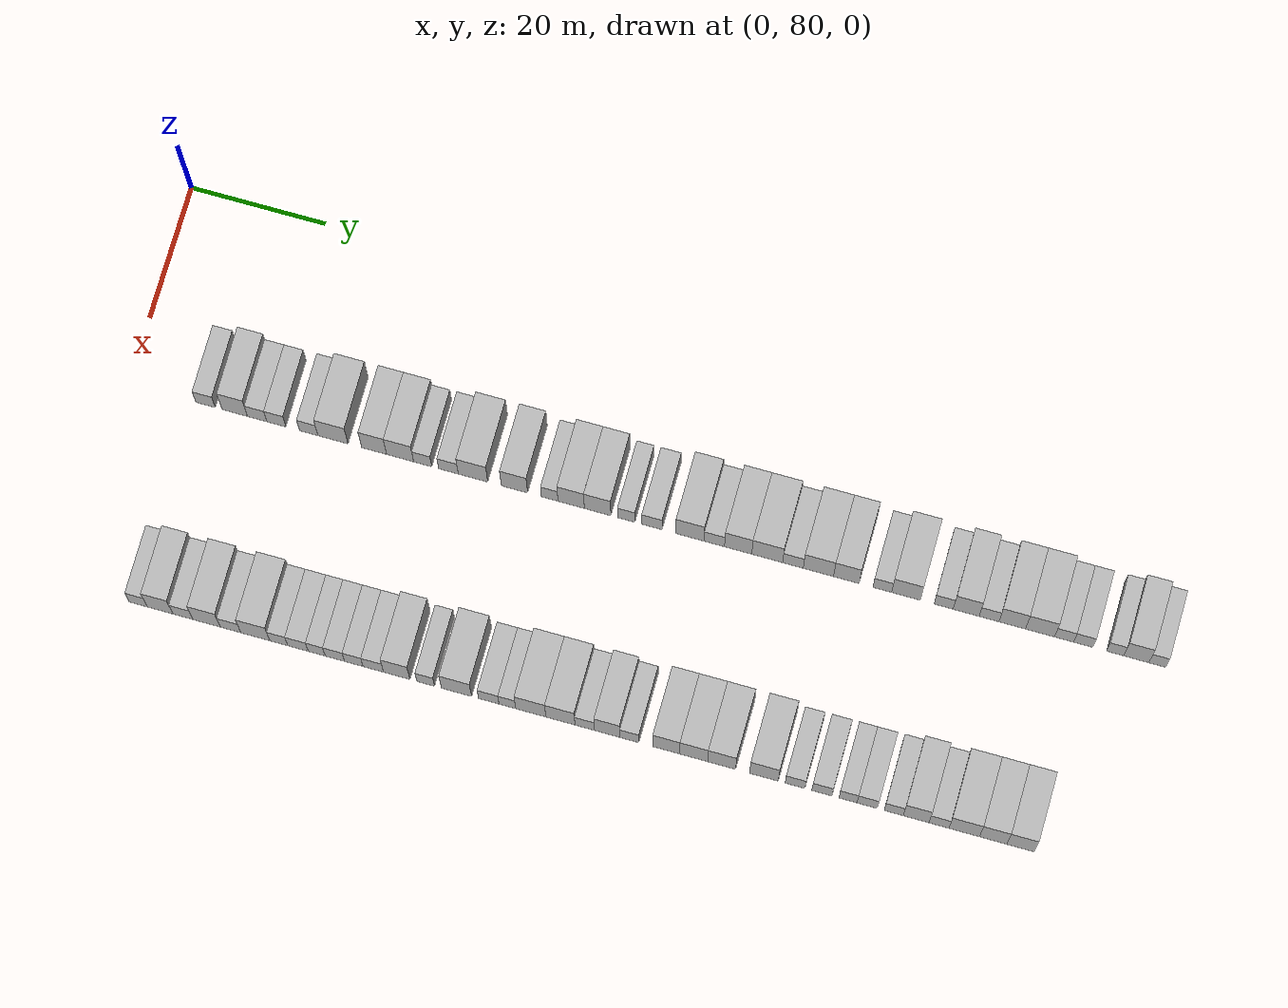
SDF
<sdf version="1.6">
 <world name="default">
  <model name="building_130">
   <static>1</static>
   <pose>25.0000 91.2222 0 0.000000 0.000000 0.000000</pose>
   <link name="link">
    <pose>0 0 3.00 0 0 0</pose>
    <collision name="collision"><geometry><box><size>10.0000 2.8652 6.0000</size></box></geometry></collision>
    <visual name="visual">
     <cast_shadows>0</cast_shadows>
     <geometry><box><size>10.0000 2.8652 6.0000</size></box></geometry>
     <material>
      <script>
       <uri>model://HANNAS_wall/materials/scripts</uri>
       <uri>model://HANNAS_wall/materials/textures</uri>
       <name>vrc/HANNAS_wall</name>
      </script>
     </material>
    </visual>
   </link>
  </model>
  <model name="building_131">
   <static>1</static>
   <pose>25.0000 95.5251 0 0.000000 0.000000 0.000000</pose>
   <link name="link">
    <pose>0 0 4.50 0 0 0</pose>
    <collision name="collision"><geometry><box><size>10.0000 3.7407 9.0000</size></box></geometry></collision>
    <visual name="visual">
     <cast_shadows>0</cast_shadows>
     <geometry><box><size>10.0000 3.7407 9.0000</size></box></geometry>
     <material>
      <script>
       <uri>model://HANNAS_wall/materials/scripts</uri>
       <uri>model://HANNAS_wall/materials/textures</uri>
       <name>vrc/HANNAS_wall</name>
      </script>
     </material>
    </visual>
   </link>
  </model>
  <model name="building_132">
   <static>1</static>
   <pose>25.0000 98.8134 0 0.000000 0.000000 0.000000</pose>
   <link name="link">
    <pose>0 0 3.00 0 0 0</pose>
    <collision name="collision"><geometry><box><size>10.0000 2.8358 6.0000</size></box></geometry></collision>
    <visual name="visual">
     <cast_shadows>0</cast_shadows>
     <geometry><box><size>10.0000 2.8358 6.0000</size></box></geometry>
     <material>
      <script>
       <uri>model://HANNAS_wall/materials/scripts</uri>
       <uri>model://HANNAS_wall/materials/textures</uri>
       <name>vrc/HANNAS_wall</name>
      </script>
     </material>
    </visual>
   </link>
  </model>
  <model name="building_133">
   <static>1</static>
   <pose>25.0000 101.6281 0 0.000000 0.000000 0.000000</pose>
   <link name="link">
    <pose>0 0 3.00 0 0 0</pose>
    <collision name="collision"><geometry><box><size>10.0000 2.7937 6.0000</size></box></geometry></collision>
    <visual name="visual">
     <cast_shadows>0</cast_shadows>
     <geometry><box><size>10.0000 2.7937 6.0000</size></box></geometry>
     <material>
      <script>
       <uri>model://HANNAS_wall/materials/scripts</uri>
       <uri>model://HANNAS_wall/materials/textures</uri>
       <name>vrc/HANNAS_wall</name>
      </script>
     </material>
    </visual>
   </link>
  </model>
  <model name="building_134">
   <static>1</static>
   <pose>25.0000 106.3742 0 0.000000 0.000000 0.000000</pose>
   <link name="link">
    <pose>0 0 3.00 0 0 0</pose>
    <collision name="collision"><geometry><box><size>10.0000 2.6984 6.0000</size></box></geometry></collision>
    <visual name="visual">
     <cast_shadows>0</cast_shadows>
     <geometry><box><size>10.0000 2.6984 6.0000</size></box></geometry>
     <material>
      <script>
       <uri>model://HANNAS_wall/materials/scripts</uri>
       <uri>model://HANNAS_wall/materials/textures</uri>
       <name>vrc/HANNAS_wall</name>
      </script>
     </material>
    </visual>
   </link>
  </model>
  <model name="building_135">
   <static>1</static>
   <pose>25.0000 109.9422 0 0.000000 0.000000 0.000000</pose>
   <link name="link">
    <pose>0 0 4.50 0 0 0</pose>
    <collision name="collision"><geometry><box><size>10.0000 4.4377 9.0000</size></box></geometry></collision>
    <visual name="visual">
     <cast_shadows>0</cast_shadows>
     <geometry><box><size>10.0000 4.4377 9.0000</size></box></geometry>
     <material>
      <script>
       <uri>model://HANNAS_wall/materials/scripts</uri>
       <uri>model://HANNAS_wall/materials/textures</uri>
       <name>vrc/HANNAS_wall</name>
      </script>
     </material>
    </visual>
   </link>
  </model>
  <model name="building_136">
   <static>1</static>
   <pose>25.0000 115.9856 0 0.000000 0.000000 0.000000</pose>
   <link name="link">
    <pose>0 0 4.50 0 0 0</pose>
    <collision name="collision"><geometry><box><size>10.0000 3.6491 9.0000</size></box></geometry></collision>
    <visual name="visual">
     <cast_shadows>0</cast_shadows>
     <geometry><box><size>10.0000 3.6491 9.0000</size></box></geometry>
     <material>
      <script>
       <uri>model://HANNAS_wall/materials/scripts</uri>
       <uri>model://HANNAS_wall/materials/textures</uri>
       <name>vrc/HANNAS_wall</name>
      </script>
     </material>
    </visual>
   </link>
  </model>
  <model name="building_137">
   <static>1</static>
   <pose>25.0000 119.7929 0 0.000000 0.000000 0.000000</pose>
   <link name="link">
    <pose>0 0 4.50 0 0 0</pose>
    <collision name="collision"><geometry><box><size>10.0000 3.9654 9.0000</size></box></geometry></collision>
    <visual name="visual">
     <cast_shadows>0</cast_shadows>
     <geometry><box><size>10.0000 3.9654 9.0000</size></box></geometry>
     <material>
      <script>
       <uri>model://HANNAS_wall/materials/scripts</uri>
       <uri>model://HANNAS_wall/materials/textures</uri>
       <name>vrc/HANNAS_wall</name>
      </script>
     </material>
    </visual>
   </link>
  </model>
  <model name="building_138">
   <static>1</static>
   <pose>25.0000 123.1005 0 0.000000 0.000000 0.000000</pose>
   <link name="link">
    <pose>0 0 3.00 0 0 0</pose>
    <collision name="collision"><geometry><box><size>10.0000 2.6499 6.0000</size></box></geometry></collision>
    <visual name="visual">
     <cast_shadows>0</cast_shadows>
     <geometry><box><size>10.0000 2.6499 6.0000</size></box></geometry>
     <material>
      <script>
       <uri>model://HANNAS_wall/materials/scripts</uri>
       <uri>model://HANNAS_wall/materials/textures</uri>
       <name>vrc/HANNAS_wall</name>
      </script>
     </material>
    </visual>
   </link>
  </model>
  <model name="building_139">
   <static>1</static>
   <pose>25.0000 126.8644 0 0.000000 0.000000 0.000000</pose>
   <link name="link">
    <pose>0 0 3.00 0 0 0</pose>
    <collision name="collision"><geometry><box><size>10.0000 2.8779 6.0000</size></box></geometry></collision>
    <visual name="visual">
     <cast_shadows>0</cast_shadows>
     <geometry><box><size>10.0000 2.8779 6.0000</size></box></geometry>
     <material>
      <script>
       <uri>model://HANNAS_wall/materials/scripts</uri>
       <uri>model://HANNAS_wall/materials/textures</uri>
       <name>vrc/HANNAS_wall</name>
      </script>
     </material>
    </visual>
   </link>
  </model>
  <model name="building_140">
   <static>1</static>
   <pose>25.0000 130.4616 0 0.000000 0.000000 0.000000</pose>
   <link name="link">
    <pose>0 0 4.50 0 0 0</pose>
    <collision name="collision"><geometry><box><size>10.0000 4.3164 9.0000</size></box></geometry></collision>
    <visual name="visual">
     <cast_shadows>0</cast_shadows>
     <geometry><box><size>10.0000 4.3164 9.0000</size></box></geometry>
     <material>
      <script>
       <uri>model://HANNAS_wall/materials/scripts</uri>
       <uri>model://HANNAS_wall/materials/textures</uri>
       <name>vrc/HANNAS_wall</name>
      </script>
     </material>
    </visual>
   </link>
  </model>
  <model name="building_141">
   <static>1</static>
   <pose>25.0000 136.5349 0 0.000000 0.000000 0.000000</pose>
   <link name="link">
    <pose>0 0 4.50 0 0 0</pose>
    <collision name="collision"><geometry><box><size>10.0000 3.8302 9.0000</size></box></geometry></collision>
    <visual name="visual">
     <cast_shadows>0</cast_shadows>
     <geometry><box><size>10.0000 3.8302 9.0000</size></box></geometry>
     <material>
      <script>
       <uri>model://HANNAS_wall/materials/scripts</uri>
       <uri>model://HANNAS_wall/materials/textures</uri>
       <name>vrc/HANNAS_wall</name>
      </script>
     </material>
    </visual>
   </link>
  </model>
  <model name="building_142">
   <static>1</static>
   <pose>25.0000 141.6599 0 0.000000 0.000000 0.000000</pose>
   <link name="link">
    <pose>0 0 3.00 0 0 0</pose>
    <collision name="collision"><geometry><box><size>10.0000 2.4198 6.0000</size></box></geometry></collision>
    <visual name="visual">
     <cast_shadows>0</cast_shadows>
     <geometry><box><size>10.0000 2.4198 6.0000</size></box></geometry>
     <material>
      <script>
       <uri>model://HANNAS_wall/materials/scripts</uri>
       <uri>model://HANNAS_wall/materials/textures</uri>
       <name>vrc/HANNAS_wall</name>
      </script>
     </material>
    </visual>
   </link>
  </model>
  <model name="building_143">
   <static>1</static>
   <pose>25.0000 144.7968 0 0.000000 0.000000 0.000000</pose>
   <link name="link">
    <pose>0 0 4.50 0 0 0</pose>
    <collision name="collision"><geometry><box><size>10.0000 3.8540 9.0000</size></box></geometry></collision>
    <visual name="visual">
     <cast_shadows>0</cast_shadows>
     <geometry><box><size>10.0000 3.8540 9.0000</size></box></geometry>
     <material>
      <script>
       <uri>model://HANNAS_wall/materials/scripts</uri>
       <uri>model://HANNAS_wall/materials/textures</uri>
       <name>vrc/HANNAS_wall</name>
      </script>
     </material>
    </visual>
   </link>
  </model>
  <model name="building_144">
   <static>1</static>
   <pose>25.0000 148.6554 0 0.000000 0.000000 0.000000</pose>
   <link name="link">
    <pose>0 0 4.50 0 0 0</pose>
    <collision name="collision"><geometry><box><size>10.0000 3.8631 9.0000</size></box></geometry></collision>
    <visual name="visual">
     <cast_shadows>0</cast_shadows>
     <geometry><box><size>10.0000 3.8631 9.0000</size></box></geometry>
     <material>
      <script>
       <uri>model://HANNAS_wall/materials/scripts</uri>
       <uri>model://HANNAS_wall/materials/textures</uri>
       <name>vrc/HANNAS_wall</name>
      </script>
     </material>
    </visual>
   </link>
  </model>
  <model name="building_145">
   <static>1</static>
   <pose>25.0000 152.8406 0 0.000000 0.000000 0.000000</pose>
   <link name="link">
    <pose>0 0 3.00 0 0 0</pose>
    <collision name="collision"><geometry><box><size>10.0000 2.5073 6.0000</size></box></geometry></collision>
    <visual name="visual">
     <cast_shadows>0</cast_shadows>
     <geometry><box><size>10.0000 2.5073 6.0000</size></box></geometry>
     <material>
      <script>
       <uri>model://HANNAS_wall/materials/scripts</uri>
       <uri>model://HANNAS_wall/materials/textures</uri>
       <name>vrc/HANNAS_wall</name>
      </script>
     </material>
    </visual>
   </link>
  </model>
  <model name="building_146">
   <static>1</static>
   <pose>25.0000 156.5673 0 0.000000 0.000000 0.000000</pose>
   <link name="link">
    <pose>0 0 3.00 0 0 0</pose>
    <collision name="collision"><geometry><box><size>10.0000 2.9460 6.0000</size></box></geometry></collision>
    <visual name="visual">
     <cast_shadows>0</cast_shadows>
     <geometry><box><size>10.0000 2.9460 6.0000</size></box></geometry>
     <material>
      <script>
       <uri>model://HANNAS_wall/materials/scripts</uri>
       <uri>model://HANNAS_wall/materials/textures</uri>
       <name>vrc/HANNAS_wall</name>
      </script>
     </material>
    </visual>
   </link>
  </model>
  <model name="building_147">
   <static>1</static>
   <pose>25.0000 162.0983 0 0.000000 0.000000 0.000000</pose>
   <link name="link">
    <pose>0 0 4.50 0 0 0</pose>
    <collision name="collision"><geometry><box><size>10.0000 4.1160 9.0000</size></box></geometry></collision>
    <visual name="visual">
     <cast_shadows>0</cast_shadows>
     <geometry><box><size>10.0000 4.1160 9.0000</size></box></geometry>
     <material>
      <script>
       <uri>model://HANNAS_wall/materials/scripts</uri>
       <uri>model://HANNAS_wall/materials/textures</uri>
       <name>vrc/HANNAS_wall</name>
      </script>
     </material>
    </visual>
   </link>
  </model>
  <model name="building_148">
   <static>1</static>
   <pose>25.0000 165.6359 0 0.000000 0.000000 0.000000</pose>
   <link name="link">
    <pose>0 0 3.00 0 0 0</pose>
    <collision name="collision"><geometry><box><size>10.0000 2.9592 6.0000</size></box></geometry></collision>
    <visual name="visual">
     <cast_shadows>0</cast_shadows>
     <geometry><box><size>10.0000 2.9592 6.0000</size></box></geometry>
     <material>
      <script>
       <uri>model://HANNAS_wall/materials/scripts</uri>
       <uri>model://HANNAS_wall/materials/textures</uri>
       <name>vrc/HANNAS_wall</name>
      </script>
     </material>
    </visual>
   </link>
  </model>
  <model name="building_149">
   <static>1</static>
   <pose>25.0000 169.0946 0 0.000000 0.000000 0.000000</pose>
   <link name="link">
    <pose>0 0 4.50 0 0 0</pose>
    <collision name="collision"><geometry><box><size>10.0000 3.9581 9.0000</size></box></geometry></collision>
    <visual name="visual">
     <cast_shadows>0</cast_shadows>
     <geometry><box><size>10.0000 3.9581 9.0000</size></box></geometry>
     <material>
      <script>
       <uri>model://HANNAS_wall/materials/scripts</uri>
       <uri>model://HANNAS_wall/materials/textures</uri>
       <name>vrc/HANNAS_wall</name>
      </script>
     </material>
    </visual>
   </link>
  </model>
  <model name="building_150">
   <static>1</static>
   <pose>25.0000 173.3161 0 0.000000 0.000000 0.000000</pose>
   <link name="link">
    <pose>0 0 4.50 0 0 0</pose>
    <collision name="collision"><geometry><box><size>10.0000 4.4849 9.0000</size></box></geometry></collision>
    <visual name="visual">
     <cast_shadows>0</cast_shadows>
     <geometry><box><size>10.0000 4.4849 9.0000</size></box></geometry>
     <material>
      <script>
       <uri>model://HANNAS_wall/materials/scripts</uri>
       <uri>model://HANNAS_wall/materials/textures</uri>
       <name>vrc/HANNAS_wall</name>
      </script>
     </material>
    </visual>
   </link>
  </model>
  <model name="building_151">
   <static>1</static>
   <pose>25.0000 177.0533 0 0.000000 0.000000 0.000000</pose>
   <link name="link">
    <pose>0 0 3.00 0 0 0</pose>
    <collision name="collision"><geometry><box><size>10.0000 2.9894 6.0000</size></box></geometry></collision>
    <visual name="visual">
     <cast_shadows>0</cast_shadows>
     <geometry><box><size>10.0000 2.9894 6.0000</size></box></geometry>
     <material>
      <script>
       <uri>model://HANNAS_wall/materials/scripts</uri>
       <uri>model://HANNAS_wall/materials/textures</uri>
       <name>vrc/HANNAS_wall</name>
      </script>
     </material>
    </visual>
   </link>
  </model>
  <model name="building_152">
   <static>1</static>
   <pose>25.0000 180.7400 0 0.000000 0.000000 0.000000</pose>
   <link name="link">
    <pose>0 0 4.50 0 0 0</pose>
    <collision name="collision"><geometry><box><size>10.0000 4.3840 9.0000</size></box></geometry></collision>
    <visual name="visual">
     <cast_shadows>0</cast_shadows>
     <geometry><box><size>10.0000 4.3840 9.0000</size></box></geometry>
     <material>
      <script>
       <uri>model://HANNAS_wall/materials/scripts</uri>
       <uri>model://HANNAS_wall/materials/textures</uri>
       <name>vrc/HANNAS_wall</name>
      </script>
     </material>
    </visual>
   </link>
  </model>
  <model name="building_153">
   <static>1</static>
   <pose>25.0000 184.7888 0 0.000000 0.000000 0.000000</pose>
   <link name="link">
    <pose>0 0 4.50 0 0 0</pose>
    <collision name="collision"><geometry><box><size>10.0000 3.7136 9.0000</size></box></geometry></collision>
    <visual name="visual">
     <cast_shadows>0</cast_shadows>
     <geometry><box><size>10.0000 3.7136 9.0000</size></box></geometry>
     <material>
      <script>
       <uri>model://HANNAS_wall/materials/scripts</uri>
       <uri>model://HANNAS_wall/materials/textures</uri>
       <name>vrc/HANNAS_wall</name>
      </script>
     </material>
    </visual>
   </link>
  </model>
  <model name="building_154">
   <static>1</static>
   <pose>25.0000 189.9929 0 0.000000 0.000000 0.000000</pose>
   <link name="link">
    <pose>0 0 3.00 0 0 0</pose>
    <collision name="collision"><geometry><box><size>10.0000 2.6945 6.0000</size></box></geometry></collision>
    <visual name="visual">
     <cast_shadows>0</cast_shadows>
     <geometry><box><size>10.0000 2.6945 6.0000</size></box></geometry>
     <material>
      <script>
       <uri>model://HANNAS_wall/materials/scripts</uri>
       <uri>model://HANNAS_wall/materials/textures</uri>
       <name>vrc/HANNAS_wall</name>
      </script>
     </material>
    </visual>
   </link>
  </model>
  <model name="building_155">
   <static>1</static>
   <pose>25.0000 193.4157 0 0.000000 0.000000 0.000000</pose>
   <link name="link">
    <pose>0 0 4.50 0 0 0</pose>
    <collision name="collision"><geometry><box><size>10.0000 4.1512 9.0000</size></box></geometry></collision>
    <visual name="visual">
     <cast_shadows>0</cast_shadows>
     <geometry><box><size>10.0000 4.1512 9.0000</size></box></geometry>
     <material>
      <script>
       <uri>model://HANNAS_wall/materials/scripts</uri>
       <uri>model://HANNAS_wall/materials/textures</uri>
       <name>vrc/HANNAS_wall</name>
      </script>
     </material>
    </visual>
   </link>
  </model>
  <model name="building_156">
   <static>1</static>
   <pose>25.0000 198.8669 0 0.000000 0.000000 0.000000</pose>
   <link name="link">
    <pose>0 0 3.00 0 0 0</pose>
    <collision name="collision"><geometry><box><size>10.0000 2.7512 6.0000</size></box></geometry></collision>
    <visual name="visual">
     <cast_shadows>0</cast_shadows>
     <geometry><box><size>10.0000 2.7512 6.0000</size></box></geometry>
     <material>
      <script>
       <uri>model://HANNAS_wall/materials/scripts</uri>
       <uri>model://HANNAS_wall/materials/textures</uri>
       <name>vrc/HANNAS_wall</name>
      </script>
     </material>
    </visual>
   </link>
  </model>
  <model name="building_157">
   <static>1</static>
   <pose>25.0000 202.1213 0 0.000000 0.000000 0.000000</pose>
   <link name="link">
    <pose>0 0 4.50 0 0 0</pose>
    <collision name="collision"><geometry><box><size>10.0000 3.7577 9.0000</size></box></geometry></collision>
    <visual name="visual">
     <cast_shadows>0</cast_shadows>
     <geometry><box><size>10.0000 3.7577 9.0000</size></box></geometry>
     <material>
      <script>
       <uri>model://HANNAS_wall/materials/scripts</uri>
       <uri>model://HANNAS_wall/materials/textures</uri>
       <name>vrc/HANNAS_wall</name>
      </script>
     </material>
    </visual>
   </link>
  </model>
  <model name="building_158">
   <static>1</static>
   <pose>25.0000 205.4230 0 0.000000 0.000000 0.000000</pose>
   <link name="link">
    <pose>0 0 3.00 0 0 0</pose>
    <collision name="collision"><geometry><box><size>10.0000 2.8456 6.0000</size></box></geometry></collision>
    <visual name="visual">
     <cast_shadows>0</cast_shadows>
     <geometry><box><size>10.0000 2.8456 6.0000</size></box></geometry>
     <material>
      <script>
       <uri>model://HANNAS_wall/materials/scripts</uri>
       <uri>model://HANNAS_wall/materials/textures</uri>
       <name>vrc/HANNAS_wall</name>
      </script>
     </material>
    </visual>
   </link>
  </model>
  <model name="building_159">
   <static>1</static>
   <pose>25.0000 208.7552 0 0.000000 0.000000 0.000000</pose>
   <link name="link">
    <pose>0 0 4.50 0 0 0</pose>
    <collision name="collision"><geometry><box><size>10.0000 3.8187 9.0000</size></box></geometry></collision>
    <visual name="visual">
     <cast_shadows>0</cast_shadows>
     <geometry><box><size>10.0000 3.8187 9.0000</size></box></geometry>
     <material>
      <script>
       <uri>model://HANNAS_wall/materials/scripts</uri>
       <uri>model://HANNAS_wall/materials/textures</uri>
       <name>vrc/HANNAS_wall</name>
      </script>
     </material>
    </visual>
   </link>
  </model>
  <model name="building_160">
   <static>1</static>
   <pose>25.0000 212.7665 0 0.000000 0.000000 0.000000</pose>
   <link name="link">
    <pose>0 0 4.50 0 0 0</pose>
    <collision name="collision"><geometry><box><size>10.0000 4.2038 9.0000</size></box></geometry></collision>
    <visual name="visual">
     <cast_shadows>0</cast_shadows>
     <geometry><box><size>10.0000 4.2038 9.0000</size></box></geometry>
     <material>
      <script>
       <uri>model://HANNAS_wall/materials/scripts</uri>
       <uri>model://HANNAS_wall/materials/textures</uri>
       <name>vrc/HANNAS_wall</name>
      </script>
     </material>
    </visual>
   </link>
  </model>
  <model name="building_161">
   <static>1</static>
   <pose>25.0000 216.2387 0 0.000000 0.000000 0.000000</pose>
   <link name="link">
    <pose>0 0 3.00 0 0 0</pose>
    <collision name="collision"><geometry><box><size>10.0000 2.7406 6.0000</size></box></geometry></collision>
    <visual name="visual">
     <cast_shadows>0</cast_shadows>
     <geometry><box><size>10.0000 2.7406 6.0000</size></box></geometry>
     <material>
      <script>
       <uri>model://HANNAS_wall/materials/scripts</uri>
       <uri>model://HANNAS_wall/materials/textures</uri>
       <name>vrc/HANNAS_wall</name>
      </script>
     </material>
    </visual>
   </link>
  </model>
  <model name="building_162">
   <static>1</static>
   <pose>25.0000 218.9834 0 0.000000 0.000000 0.000000</pose>
   <link name="link">
    <pose>0 0 3.00 0 0 0</pose>
    <collision name="collision"><geometry><box><size>10.0000 2.7490 6.0000</size></box></geometry></collision>
    <visual name="visual">
     <cast_shadows>0</cast_shadows>
     <geometry><box><size>10.0000 2.7490 6.0000</size></box></geometry>
     <material>
      <script>
       <uri>model://HANNAS_wall/materials/scripts</uri>
       <uri>model://HANNAS_wall/materials/textures</uri>
       <name>vrc/HANNAS_wall</name>
      </script>
     </material>
    </visual>
   </link>
  </model>
  <model name="building_163">
   <static>1</static>
   <pose>25.0000 223.5846 0 0.000000 0.000000 0.000000</pose>
   <link name="link">
    <pose>0 0 3.00 0 0 0</pose>
    <collision name="collision"><geometry><box><size>10.0000 2.4534 6.0000</size></box></geometry></collision>
    <visual name="visual">
     <cast_shadows>0</cast_shadows>
     <geometry><box><size>10.0000 2.4534 6.0000</size></box></geometry>
     <material>
      <script>
       <uri>model://HANNAS_wall/materials/scripts</uri>
       <uri>model://HANNAS_wall/materials/textures</uri>
       <name>vrc/HANNAS_wall</name>
      </script>
     </material>
    </visual>
   </link>
  </model>
  <model name="building_164">
   <static>1</static>
   <pose>25.0000 226.6137 0 0.000000 0.000000 0.000000</pose>
   <link name="link">
    <pose>0 0 4.50 0 0 0</pose>
    <collision name="collision"><geometry><box><size>10.0000 3.6047 9.0000</size></box></geometry></collision>
    <visual name="visual">
     <cast_shadows>0</cast_shadows>
     <geometry><box><size>10.0000 3.6047 9.0000</size></box></geometry>
     <material>
      <script>
       <uri>model://HANNAS_wall/materials/scripts</uri>
       <uri>model://HANNAS_wall/materials/textures</uri>
       <name>vrc/HANNAS_wall</name>
      </script>
     </material>
    </visual>
   </link>
  </model>
  <model name="building_165">
   <static>1</static>
   <pose>25.0000 229.6236 0 0.000000 0.000000 0.000000</pose>
   <link name="link">
    <pose>0 0 3.00 0 0 0</pose>
    <collision name="collision"><geometry><box><size>10.0000 2.4150 6.0000</size></box></geometry></collision>
    <visual name="visual">
     <cast_shadows>0</cast_shadows>
     <geometry><box><size>10.0000 2.4150 6.0000</size></box></geometry>
     <material>
      <script>
       <uri>model://HANNAS_wall/materials/scripts</uri>
       <uri>model://HANNAS_wall/materials/textures</uri>
       <name>vrc/HANNAS_wall</name>
      </script>
     </material>
    </visual>
   </link>
  </model>
  <model name="building_368">
   <static>1</static>
   <pose>55.0000 90.4789 0 0.000000 0.000000 0.000000</pose>
   <link name="link">
    <pose>0 0 3.00 0 0 0</pose>
    <collision name="collision"><geometry><box><size>10.0000 2.6232 6.0000</size></box></geometry></collision>
    <visual name="visual">
     <cast_shadows>0</cast_shadows>
     <geometry><box><size>10.0000 2.6232 6.0000</size></box></geometry>
     <material>
      <script>
       <uri>model://HANNAS_wall/materials/scripts</uri>
       <uri>model://HANNAS_wall/materials/textures</uri>
       <name>vrc/HANNAS_wall</name>
      </script>
     </material>
    </visual>
   </link>
  </model>
  <model name="building_369">
   <static>1</static>
   <pose>55.0000 93.6648 0 0.000000 0.000000 0.000000</pose>
   <link name="link">
    <pose>0 0 4.50 0 0 0</pose>
    <collision name="collision"><geometry><box><size>10.0000 3.7487 9.0000</size></box></geometry></collision>
    <visual name="visual">
     <cast_shadows>0</cast_shadows>
     <geometry><box><size>10.0000 3.7487 9.0000</size></box></geometry>
     <material>
      <script>
       <uri>model://HANNAS_wall/materials/scripts</uri>
       <uri>model://HANNAS_wall/materials/textures</uri>
       <name>vrc/HANNAS_wall</name>
      </script>
     </material>
    </visual>
   </link>
  </model>
  <model name="building_370">
   <static>1</static>
   <pose>55.0000 97.0031 0 0.000000 0.000000 0.000000</pose>
   <link name="link">
    <pose>0 0 3.00 0 0 0</pose>
    <collision name="collision"><geometry><box><size>10.0000 2.9277 6.0000</size></box></geometry></collision>
    <visual name="visual">
     <cast_shadows>0</cast_shadows>
     <geometry><box><size>10.0000 2.9277 6.0000</size></box></geometry>
     <material>
      <script>
       <uri>model://HANNAS_wall/materials/scripts</uri>
       <uri>model://HANNAS_wall/materials/textures</uri>
       <name>vrc/HANNAS_wall</name>
      </script>
     </material>
    </visual>
   </link>
  </model>
  <model name="building_371">
   <static>1</static>
   <pose>55.0000 100.4583 0 0.000000 0.000000 0.000000</pose>
   <link name="link">
    <pose>0 0 4.50 0 0 0</pose>
    <collision name="collision"><geometry><box><size>10.0000 3.9828 9.0000</size></box></geometry></collision>
    <visual name="visual">
     <cast_shadows>0</cast_shadows>
     <geometry><box><size>10.0000 3.9828 9.0000</size></box></geometry>
     <material>
      <script>
       <uri>model://HANNAS_wall/materials/scripts</uri>
       <uri>model://HANNAS_wall/materials/textures</uri>
       <name>vrc/HANNAS_wall</name>
      </script>
     </material>
    </visual>
   </link>
  </model>
  <model name="building_372">
   <static>1</static>
   <pose>55.0000 103.9490 0 0.000000 0.000000 0.000000</pose>
   <link name="link">
    <pose>0 0 3.00 0 0 0</pose>
    <collision name="collision"><geometry><box><size>10.0000 2.9986 6.0000</size></box></geometry></collision>
    <visual name="visual">
     <cast_shadows>0</cast_shadows>
     <geometry><box><size>10.0000 2.9986 6.0000</size></box></geometry>
     <material>
      <script>
       <uri>model://HANNAS_wall/materials/scripts</uri>
       <uri>model://HANNAS_wall/materials/textures</uri>
       <name>vrc/HANNAS_wall</name>
      </script>
     </material>
    </visual>
   </link>
  </model>
  <model name="building_373">
   <static>1</static>
   <pose>55.0000 107.5519 0 0.000000 0.000000 0.000000</pose>
   <link name="link">
    <pose>0 0 4.50 0 0 0</pose>
    <collision name="collision"><geometry><box><size>10.0000 4.2071 9.0000</size></box></geometry></collision>
    <visual name="visual">
     <cast_shadows>0</cast_shadows>
     <geometry><box><size>10.0000 4.2071 9.0000</size></box></geometry>
     <material>
      <script>
       <uri>model://HANNAS_wall/materials/scripts</uri>
       <uri>model://HANNAS_wall/materials/textures</uri>
       <name>vrc/HANNAS_wall</name>
      </script>
     </material>
    </visual>
   </link>
  </model>
  <model name="building_374">
   <static>1</static>
   <pose>55.0000 110.9593 0 0.000000 0.000000 0.000000</pose>
   <link name="link">
    <pose>0 0 3.00 0 0 0</pose>
    <collision name="collision"><geometry><box><size>10.0000 2.6077 6.0000</size></box></geometry></collision>
    <visual name="visual">
     <cast_shadows>0</cast_shadows>
     <geometry><box><size>10.0000 2.6077 6.0000</size></box></geometry>
     <material>
      <script>
       <uri>model://HANNAS_wall/materials/scripts</uri>
       <uri>model://HANNAS_wall/materials/textures</uri>
       <name>vrc/HANNAS_wall</name>
      </script>
     </material>
    </visual>
   </link>
  </model>
  <model name="building_375">
   <static>1</static>
   <pose>55.0000 113.7559 0 0.000000 0.000000 0.000000</pose>
   <link name="link">
    <pose>0 0 3.00 0 0 0</pose>
    <collision name="collision"><geometry><box><size>10.0000 2.9853 6.0000</size></box></geometry></collision>
    <visual name="visual">
     <cast_shadows>0</cast_shadows>
     <geometry><box><size>10.0000 2.9853 6.0000</size></box></geometry>
     <material>
      <script>
       <uri>model://HANNAS_wall/materials/scripts</uri>
       <uri>model://HANNAS_wall/materials/textures</uri>
       <name>vrc/HANNAS_wall</name>
      </script>
     </material>
    </visual>
   </link>
  </model>
  <model name="building_376">
   <static>1</static>
   <pose>55.0000 116.4858 0 0.000000 0.000000 0.000000</pose>
   <link name="link">
    <pose>0 0 3.00 0 0 0</pose>
    <collision name="collision"><geometry><box><size>10.0000 2.4745 6.0000</size></box></geometry></collision>
    <visual name="visual">
     <cast_shadows>0</cast_shadows>
     <geometry><box><size>10.0000 2.4745 6.0000</size></box></geometry>
     <material>
      <script>
       <uri>model://HANNAS_wall/materials/scripts</uri>
       <uri>model://HANNAS_wall/materials/textures</uri>
       <name>vrc/HANNAS_wall</name>
      </script>
     </material>
    </visual>
   </link>
  </model>
  <model name="building_377">
   <static>1</static>
   <pose>55.0000 119.1280 0 0.000000 0.000000 0.000000</pose>
   <link name="link">
    <pose>0 0 3.00 0 0 0</pose>
    <collision name="collision"><geometry><box><size>10.0000 2.8099 6.0000</size></box></geometry></collision>
    <visual name="visual">
     <cast_shadows>0</cast_shadows>
     <geometry><box><size>10.0000 2.8099 6.0000</size></box></geometry>
     <material>
      <script>
       <uri>model://HANNAS_wall/materials/scripts</uri>
       <uri>model://HANNAS_wall/materials/textures</uri>
       <name>vrc/HANNAS_wall</name>
      </script>
     </material>
    </visual>
   </link>
  </model>
  <model name="building_378">
   <static>1</static>
   <pose>55.0000 121.8771 0 0.000000 0.000000 0.000000</pose>
   <link name="link">
    <pose>0 0 3.00 0 0 0</pose>
    <collision name="collision"><geometry><box><size>10.0000 2.6884 6.0000</size></box></geometry></collision>
    <visual name="visual">
     <cast_shadows>0</cast_shadows>
     <geometry><box><size>10.0000 2.6884 6.0000</size></box></geometry>
     <material>
      <script>
       <uri>model://HANNAS_wall/materials/scripts</uri>
       <uri>model://HANNAS_wall/materials/textures</uri>
       <name>vrc/HANNAS_wall</name>
      </script>
     </material>
    </visual>
   </link>
  </model>
  <model name="building_379">
   <static>1</static>
   <pose>55.0000 124.7059 0 0.000000 0.000000 0.000000</pose>
   <link name="link">
    <pose>0 0 3.00 0 0 0</pose>
    <collision name="collision"><geometry><box><size>10.0000 2.9692 6.0000</size></box></geometry></collision>
    <visual name="visual">
     <cast_shadows>0</cast_shadows>
     <geometry><box><size>10.0000 2.9692 6.0000</size></box></geometry>
     <material>
      <script>
       <uri>model://HANNAS_wall/materials/scripts</uri>
       <uri>model://HANNAS_wall/materials/textures</uri>
       <name>vrc/HANNAS_wall</name>
      </script>
     </material>
    </visual>
   </link>
  </model>
  <model name="building_380">
   <static>1</static>
   <pose>55.0000 128.1050 0 0.000000 0.000000 0.000000</pose>
   <link name="link">
    <pose>0 0 4.50 0 0 0</pose>
    <collision name="collision"><geometry><box><size>10.0000 3.8291 9.0000</size></box></geometry></collision>
    <visual name="visual">
     <cast_shadows>0</cast_shadows>
     <geometry><box><size>10.0000 3.8291 9.0000</size></box></geometry>
     <material>
      <script>
       <uri>model://HANNAS_wall/materials/scripts</uri>
       <uri>model://HANNAS_wall/materials/textures</uri>
       <name>vrc/HANNAS_wall</name>
      </script>
     </material>
    </visual>
   </link>
  </model>
  <model name="building_381">
   <static>1</static>
   <pose>55.0000 132.2936 0 0.000000 0.000000 0.000000</pose>
   <link name="link">
    <pose>0 0 3.00 0 0 0</pose>
    <collision name="collision"><geometry><box><size>10.0000 2.5480 6.0000</size></box></geometry></collision>
    <visual name="visual">
     <cast_shadows>0</cast_shadows>
     <geometry><box><size>10.0000 2.5480 6.0000</size></box></geometry>
     <material>
      <script>
       <uri>model://HANNAS_wall/materials/scripts</uri>
       <uri>model://HANNAS_wall/materials/textures</uri>
       <name>vrc/HANNAS_wall</name>
      </script>
     </material>
    </visual>
   </link>
  </model>
  <model name="building_382">
   <static>1</static>
   <pose>55.0000 136.7537 0 0.000000 0.000000 0.000000</pose>
   <link name="link">
    <pose>0 0 4.50 0 0 0</pose>
    <collision name="collision"><geometry><box><size>10.0000 4.3723 9.0000</size></box></geometry></collision>
    <visual name="visual">
     <cast_shadows>0</cast_shadows>
     <geometry><box><size>10.0000 4.3723 9.0000</size></box></geometry>
     <material>
      <script>
       <uri>model://HANNAS_wall/materials/scripts</uri>
       <uri>model://HANNAS_wall/materials/textures</uri>
       <name>vrc/HANNAS_wall</name>
      </script>
     </material>
    </visual>
   </link>
  </model>
  <model name="building_383">
   <static>1</static>
   <pose>55.0000 141.4159 0 0.000000 0.000000 0.000000</pose>
   <link name="link">
    <pose>0 0 3.00 0 0 0</pose>
    <collision name="collision"><geometry><box><size>10.0000 2.9521 6.0000</size></box></geometry></collision>
    <visual name="visual">
     <cast_shadows>0</cast_shadows>
     <geometry><box><size>10.0000 2.9521 6.0000</size></box></geometry>
     <material>
      <script>
       <uri>model://HANNAS_wall/materials/scripts</uri>
       <uri>model://HANNAS_wall/materials/textures</uri>
       <name>vrc/HANNAS_wall</name>
      </script>
     </material>
    </visual>
   </link>
  </model>
  <model name="building_384">
   <static>1</static>
   <pose>55.0000 144.0968 0 0.000000 0.000000 0.000000</pose>
   <link name="link">
    <pose>0 0 3.00 0 0 0</pose>
    <collision name="collision"><geometry><box><size>10.0000 2.4097 6.0000</size></box></geometry></collision>
    <visual name="visual">
     <cast_shadows>0</cast_shadows>
     <geometry><box><size>10.0000 2.4097 6.0000</size></box></geometry>
     <material>
      <script>
       <uri>model://HANNAS_wall/materials/scripts</uri>
       <uri>model://HANNAS_wall/materials/textures</uri>
       <name>vrc/HANNAS_wall</name>
      </script>
     </material>
    </visual>
   </link>
  </model>
  <model name="building_385">
   <static>1</static>
   <pose>55.0000 147.4817 0 0.000000 0.000000 0.000000</pose>
   <link name="link">
    <pose>0 0 4.50 0 0 0</pose>
    <collision name="collision"><geometry><box><size>10.0000 4.3601 9.0000</size></box></geometry></collision>
    <visual name="visual">
     <cast_shadows>0</cast_shadows>
     <geometry><box><size>10.0000 4.3601 9.0000</size></box></geometry>
     <material>
      <script>
       <uri>model://HANNAS_wall/materials/scripts</uri>
       <uri>model://HANNAS_wall/materials/textures</uri>
       <name>vrc/HANNAS_wall</name>
      </script>
     </material>
    </visual>
   </link>
  </model>
  <model name="building_386">
   <static>1</static>
   <pose>55.0000 151.7689 0 0.000000 0.000000 0.000000</pose>
   <link name="link">
    <pose>0 0 4.50 0 0 0</pose>
    <collision name="collision"><geometry><box><size>10.0000 4.2143 9.0000</size></box></geometry></collision>
    <visual name="visual">
     <cast_shadows>0</cast_shadows>
     <geometry><box><size>10.0000 4.2143 9.0000</size></box></geometry>
     <material>
      <script>
       <uri>model://HANNAS_wall/materials/scripts</uri>
       <uri>model://HANNAS_wall/materials/textures</uri>
       <name>vrc/HANNAS_wall</name>
      </script>
     </material>
    </visual>
   </link>
  </model>
  <model name="building_387">
   <static>1</static>
   <pose>55.0000 155.2801 0 0.000000 0.000000 0.000000</pose>
   <link name="link">
    <pose>0 0 3.00 0 0 0</pose>
    <collision name="collision"><geometry><box><size>10.0000 2.8082 6.0000</size></box></geometry></collision>
    <visual name="visual">
     <cast_shadows>0</cast_shadows>
     <geometry><box><size>10.0000 2.8082 6.0000</size></box></geometry>
     <material>
      <script>
       <uri>model://HANNAS_wall/materials/scripts</uri>
       <uri>model://HANNAS_wall/materials/textures</uri>
       <name>vrc/HANNAS_wall</name>
      </script>
     </material>
    </visual>
   </link>
  </model>
  <model name="building_388">
   <static>1</static>
   <pose>55.0000 158.5147 0 0.000000 0.000000 0.000000</pose>
   <link name="link">
    <pose>0 0 4.50 0 0 0</pose>
    <collision name="collision"><geometry><box><size>10.0000 3.6610 9.0000</size></box></geometry></collision>
    <visual name="visual">
     <cast_shadows>0</cast_shadows>
     <geometry><box><size>10.0000 3.6610 9.0000</size></box></geometry>
     <material>
      <script>
       <uri>model://HANNAS_wall/materials/scripts</uri>
       <uri>model://HANNAS_wall/materials/textures</uri>
       <name>vrc/HANNAS_wall</name>
      </script>
     </material>
    </visual>
   </link>
  </model>
  <model name="building_389">
   <static>1</static>
   <pose>55.0000 161.7135 0 0.000000 0.000000 0.000000</pose>
   <link name="link">
    <pose>0 0 3.00 0 0 0</pose>
    <collision name="collision"><geometry><box><size>10.0000 2.7364 6.0000</size></box></geometry></collision>
    <visual name="visual">
     <cast_shadows>0</cast_shadows>
     <geometry><box><size>10.0000 2.7364 6.0000</size></box></geometry>
     <material>
      <script>
       <uri>model://HANNAS_wall/materials/scripts</uri>
       <uri>model://HANNAS_wall/materials/textures</uri>
       <name>vrc/HANNAS_wall</name>
      </script>
     </material>
    </visual>
   </link>
  </model>
  <model name="building_390">
   <static>1</static>
   <pose>55.0000 167.0152 0 0.000000 0.000000 0.000000</pose>
   <link name="link">
    <pose>0 0 4.50 0 0 0</pose>
    <collision name="collision"><geometry><box><size>10.0000 3.8669 9.0000</size></box></geometry></collision>
    <visual name="visual">
     <cast_shadows>0</cast_shadows>
     <geometry><box><size>10.0000 3.8669 9.0000</size></box></geometry>
     <material>
      <script>
       <uri>model://HANNAS_wall/materials/scripts</uri>
       <uri>model://HANNAS_wall/materials/textures</uri>
       <name>vrc/HANNAS_wall</name>
      </script>
     </material>
    </visual>
   </link>
  </model>
  <model name="building_391">
   <static>1</static>
   <pose>55.0000 170.9635 0 0.000000 0.000000 0.000000</pose>
   <link name="link">
    <pose>0 0 4.50 0 0 0</pose>
    <collision name="collision"><geometry><box><size>10.0000 4.0297 9.0000</size></box></geometry></collision>
    <visual name="visual">
     <cast_shadows>0</cast_shadows>
     <geometry><box><size>10.0000 4.0297 9.0000</size></box></geometry>
     <material>
      <script>
       <uri>model://HANNAS_wall/materials/scripts</uri>
       <uri>model://HANNAS_wall/materials/textures</uri>
       <name>vrc/HANNAS_wall</name>
      </script>
     </material>
    </visual>
   </link>
  </model>
  <model name="building_392">
   <static>1</static>
   <pose>55.0000 174.9945 0 0.000000 0.000000 0.000000</pose>
   <link name="link">
    <pose>0 0 4.50 0 0 0</pose>
    <collision name="collision"><geometry><box><size>10.0000 4.0322 9.0000</size></box></geometry></collision>
    <visual name="visual">
     <cast_shadows>0</cast_shadows>
     <geometry><box><size>10.0000 4.0322 9.0000</size></box></geometry>
     <material>
      <script>
       <uri>model://HANNAS_wall/materials/scripts</uri>
       <uri>model://HANNAS_wall/materials/textures</uri>
       <name>vrc/HANNAS_wall</name>
      </script>
     </material>
    </visual>
   </link>
  </model>
  <model name="building_393">
   <static>1</static>
   <pose>55.0000 181.0698 0 0.000000 0.000000 0.000000</pose>
   <link name="link">
    <pose>0 0 4.50 0 0 0</pose>
    <collision name="collision"><geometry><box><size>10.0000 4.1184 9.0000</size></box></geometry></collision>
    <visual name="visual">
     <cast_shadows>0</cast_shadows>
     <geometry><box><size>10.0000 4.1184 9.0000</size></box></geometry>
     <material>
      <script>
       <uri>model://HANNAS_wall/materials/scripts</uri>
       <uri>model://HANNAS_wall/materials/textures</uri>
       <name>vrc/HANNAS_wall</name>
      </script>
     </material>
    </visual>
   </link>
  </model>
  <model name="building_394">
   <static>1</static>
   <pose>55.0000 185.5385 0 0.000000 0.000000 0.000000</pose>
   <link name="link">
    <pose>0 0 3.00 0 0 0</pose>
    <collision name="collision"><geometry><box><size>10.0000 2.8192 6.0000</size></box></geometry></collision>
    <visual name="visual">
     <cast_shadows>0</cast_shadows>
     <geometry><box><size>10.0000 2.8192 6.0000</size></box></geometry>
     <material>
      <script>
       <uri>model://HANNAS_wall/materials/scripts</uri>
       <uri>model://HANNAS_wall/materials/textures</uri>
       <name>vrc/HANNAS_wall</name>
      </script>
     </material>
    </visual>
   </link>
  </model>
  <model name="building_395">
   <static>1</static>
   <pose>55.0000 189.3923 0 0.000000 0.000000 0.000000</pose>
   <link name="link">
    <pose>0 0 3.00 0 0 0</pose>
    <collision name="collision"><geometry><box><size>10.0000 2.8883 6.0000</size></box></geometry></collision>
    <visual name="visual">
     <cast_shadows>0</cast_shadows>
     <geometry><box><size>10.0000 2.8883 6.0000</size></box></geometry>
     <material>
      <script>
       <uri>model://HANNAS_wall/materials/scripts</uri>
       <uri>model://HANNAS_wall/materials/textures</uri>
       <name>vrc/HANNAS_wall</name>
      </script>
     </material>
    </visual>
   </link>
  </model>
  <model name="building_396">
   <static>1</static>
   <pose>55.0000 193.1316 0 0.000000 0.000000 0.000000</pose>
   <link name="link">
    <pose>0 0 3.00 0 0 0</pose>
    <collision name="collision"><geometry><box><size>10.0000 2.5905 6.0000</size></box></geometry></collision>
    <visual name="visual">
     <cast_shadows>0</cast_shadows>
     <geometry><box><size>10.0000 2.5905 6.0000</size></box></geometry>
     <material>
      <script>
       <uri>model://HANNAS_wall/materials/scripts</uri>
       <uri>model://HANNAS_wall/materials/textures</uri>
       <name>vrc/HANNAS_wall</name>
      </script>
     </material>
    </visual>
   </link>
  </model>
  <model name="building_397">
   <static>1</static>
   <pose>55.0000 195.8765 0 0.000000 0.000000 0.000000</pose>
   <link name="link">
    <pose>0 0 3.00 0 0 0</pose>
    <collision name="collision"><geometry><box><size>10.0000 2.8993 6.0000</size></box></geometry></collision>
    <visual name="visual">
     <cast_shadows>0</cast_shadows>
     <geometry><box><size>10.0000 2.8993 6.0000</size></box></geometry>
     <material>
      <script>
       <uri>model://HANNAS_wall/materials/scripts</uri>
       <uri>model://HANNAS_wall/materials/textures</uri>
       <name>vrc/HANNAS_wall</name>
      </script>
     </material>
    </visual>
   </link>
  </model>
  <model name="building_398">
   <static>1</static>
   <pose>55.0000 199.6887 0 0.000000 0.000000 0.000000</pose>
   <link name="link">
    <pose>0 0 3.00 0 0 0</pose>
    <collision name="collision"><geometry><box><size>10.0000 2.7252 6.0000</size></box></geometry></collision>
    <visual name="visual">
     <cast_shadows>0</cast_shadows>
     <geometry><box><size>10.0000 2.7252 6.0000</size></box></geometry>
     <material>
      <script>
       <uri>model://HANNAS_wall/materials/scripts</uri>
       <uri>model://HANNAS_wall/materials/textures</uri>
       <name>vrc/HANNAS_wall</name>
      </script>
     </material>
    </visual>
   </link>
  </model>
  <model name="building_399">
   <static>1</static>
   <pose>55.0000 202.8847 0 0.000000 0.000000 0.000000</pose>
   <link name="link">
    <pose>0 0 4.50 0 0 0</pose>
    <collision name="collision"><geometry><box><size>10.0000 3.6667 9.0000</size></box></geometry></collision>
    <visual name="visual">
     <cast_shadows>0</cast_shadows>
     <geometry><box><size>10.0000 3.6667 9.0000</size></box></geometry>
     <material>
      <script>
       <uri>model://HANNAS_wall/materials/scripts</uri>
       <uri>model://HANNAS_wall/materials/textures</uri>
       <name>vrc/HANNAS_wall</name>
      </script>
     </material>
    </visual>
   </link>
  </model>
  <model name="building_400">
   <static>1</static>
   <pose>55.0000 206.1442 0 0.000000 0.000000 0.000000</pose>
   <link name="link">
    <pose>0 0 3.00 0 0 0</pose>
    <collision name="collision"><geometry><box><size>10.0000 2.8523 6.0000</size></box></geometry></collision>
    <visual name="visual">
     <cast_shadows>0</cast_shadows>
     <geometry><box><size>10.0000 2.8523 6.0000</size></box></geometry>
     <material>
      <script>
       <uri>model://HANNAS_wall/materials/scripts</uri>
       <uri>model://HANNAS_wall/materials/textures</uri>
       <name>vrc/HANNAS_wall</name>
      </script>
     </material>
    </visual>
   </link>
  </model>
  <model name="building_401">
   <static>1</static>
   <pose>55.0000 209.7565 0 0.000000 0.000000 0.000000</pose>
   <link name="link">
    <pose>0 0 4.50 0 0 0</pose>
    <collision name="collision"><geometry><box><size>10.0000 4.3723 9.0000</size></box></geometry></collision>
    <visual name="visual">
     <cast_shadows>0</cast_shadows>
     <geometry><box><size>10.0000 4.3723 9.0000</size></box></geometry>
     <material>
      <script>
       <uri>model://HANNAS_wall/materials/scripts</uri>
       <uri>model://HANNAS_wall/materials/textures</uri>
       <name>vrc/HANNAS_wall</name>
      </script>
     </material>
    </visual>
   </link>
  </model>
  <model name="building_402">
   <static>1</static>
   <pose>55.0000 213.8889 0 0.000000 0.000000 0.000000</pose>
   <link name="link">
    <pose>0 0 4.50 0 0 0</pose>
    <collision name="collision"><geometry><box><size>10.0000 3.8926 9.0000</size></box></geometry></collision>
    <visual name="visual">
     <cast_shadows>0</cast_shadows>
     <geometry><box><size>10.0000 3.8926 9.0000</size></box></geometry>
     <material>
      <script>
       <uri>model://HANNAS_wall/materials/scripts</uri>
       <uri>model://HANNAS_wall/materials/textures</uri>
       <name>vrc/HANNAS_wall</name>
      </script>
     </material>
    </visual>
   </link>
  </model>
  <model name="building_403">
   <static>1</static>
   <pose>55.0000 217.7777 0 0.000000 0.000000 0.000000</pose>
   <link name="link">
    <pose>0 0 4.50 0 0 0</pose>
    <collision name="collision"><geometry><box><size>10.0000 3.8850 9.0000</size></box></geometry></collision>
    <visual name="visual">
     <cast_shadows>0</cast_shadows>
     <geometry><box><size>10.0000 3.8850 9.0000</size></box></geometry>
     <material>
      <script>
       <uri>model://HANNAS_wall/materials/scripts</uri>
       <uri>model://HANNAS_wall/materials/textures</uri>
       <name>vrc/HANNAS_wall</name>
      </script>
     </material>
    </visual>
   </link>
  </model>
 </world>
</sdf>
